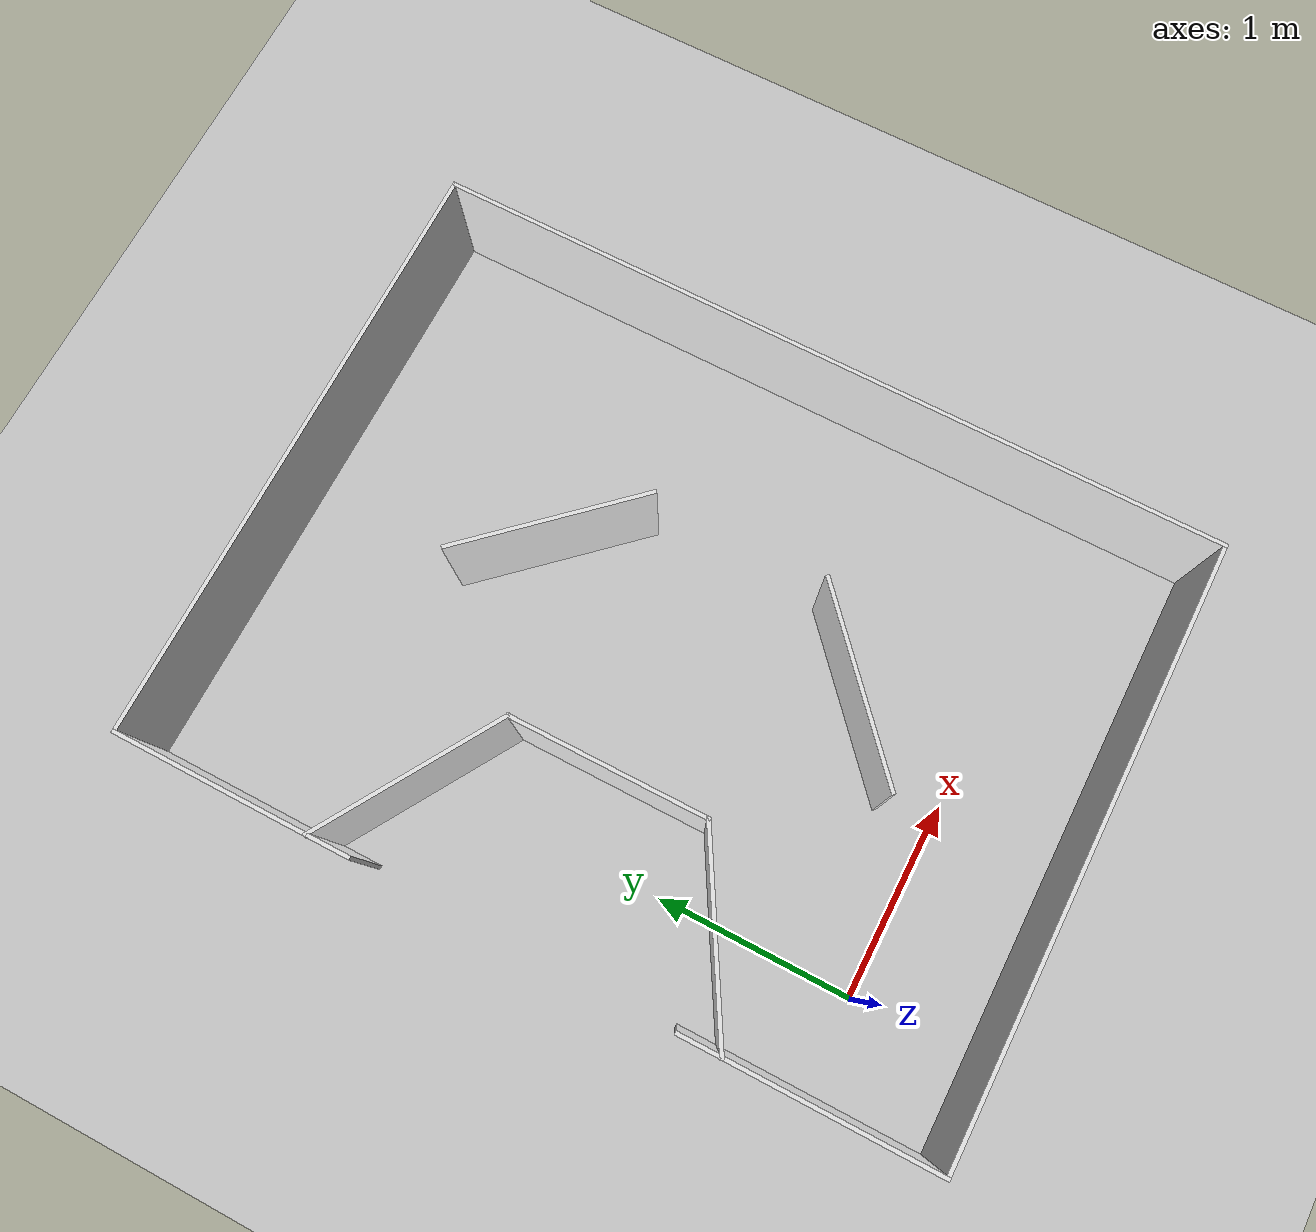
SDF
<?xml version="1.0" ?>
<sdf version="1.7">
  <world name="polygon_rosbag">

    <physics type='ode'>
      <real_time_update_rate>1000</real_time_update_rate>
      <max_step_size>0.001</max_step_size>
      <real_time_factor>1</real_time_factor>
      <ode>
        <solver>
          <type>quick</type>
          <iters>150</iters>
          <precon_iters>0</precon_iters>
          <sor>1.4</sor>
          <use_dynamic_moi_rescaling>1</use_dynamic_moi_rescaling>
        </solver>
        <constraints>
          <cfm>1e-05</cfm>
          <erp>0.2</erp>
          <contact_max_correcting_vel>100</contact_max_correcting_vel>
          <contact_surface_layer>0.001</contact_surface_layer>
        </constraints>
      </ode>
    </physics>

    <gravity>0 0 -9.8</gravity>
    <magnetic_field>6e-06 2.3e-05 -4.2e-05</magnetic_field>
    <atmosphere type='adiabatic' />
    <scene>
      <ambient>0.4 0.4 0.4 1</ambient>
      <background>0.7 0.7 0.7 1</background>
      <shadows>1</shadows>
    </scene>

    <light name='sun' type='directional'>
      <cast_shadows>1</cast_shadows>
      <pose>0 0 10 0 -0 0</pose>
      <diffuse>0.8 0.8 0.8 1</diffuse>
      <specular>0.2 0.2 0.2 1</specular>
      <direction>-0.5 0.1 -0.9</direction>
    </light>

    <model name='ground_plane'>
      <static>1</static>
      <link name='link'>
        <collision name='collision'>
          <geometry>
            <plane>
              <normal>0 0 1</normal>
              <size>100 100</size>
            </plane>
          </geometry>
          <surface>
            <friction>
              <ode>
                <mu>100</mu>
                <mu2>50</mu2>
              </ode>
            </friction>
          </surface>
        </collision>
        <visual name='visual'>
          <cast_shadows>0</cast_shadows>
          <geometry>
            <plane>
              <normal>0 0 1</normal>
              <size>100 100</size>
            </plane>
          </geometry>
          <material>
            <script>
              <uri>file://media/materials/scripts/gazebo.material</uri>
              <name>Gazebo/Grey</name>
            </script>
          </material>
        </visual>
      </link>
    </model>

    <model name='polygon_rosbag_built'>
      <static>1</static>
      <link name="Panel_0">
        <pose>2.576 1.432 0 0 0 1.5708</pose>
        <collision name="Panel_0_Collision">
          <pose>0 0 0.300 0 0 0</pose>
          <geometry><box><size>4.068 0.02 0.600</size></box></geometry>
        </collision>
        <visual name="Panel_0_Visual">
          <pose>0 0 0.300 0 0 0</pose>
          <geometry><box><size>4.068 0.02 0.600</size></box></geometry>
          <material>
            <script>
              <uri>file://media/materials/scripts/gazebo.material</uri>
              <name>Gazebo/White</name>
            </script>
          </material>
        </visual>
      </link>
      <link name="Panel_1">
        <pose>1.049 -0.592 0 0 0 0.0000</pose>
        <collision name="Panel_1_Collision">
          <pose>0 0 0.300 0 0 0</pose>
          <geometry><box><size>3.074 0.02 0.600</size></box></geometry>
        </collision>
        <visual name="Panel_1_Visual">
          <pose>0 0 0.300 0 0 0</pose>
          <geometry><box><size>3.074 0.02 0.600</size></box></geometry>
          <material>
            <script>
              <uri>file://media/materials/scripts/gazebo.material</uri>
              <name>Gazebo/White</name>
            </script>
          </material>
        </visual>
      </link>
      <link name="Panel_2">
        <pose>1.049 3.456 0 0 0 3.1416</pose>
        <collision name="Panel_2_Collision">
          <pose>0 0 0.300 0 0 0</pose>
          <geometry><box><size>3.074 0.02 0.600</size></box></geometry>
        </collision>
        <visual name="Panel_2_Visual">
          <pose>0 0 0.300 0 0 0</pose>
          <geometry><box><size>3.074 0.02 0.600</size></box></geometry>
          <material>
            <script>
              <uri>file://media/materials/scripts/gazebo.material</uri>
              <name>Gazebo/White</name>
            </script>
          </material>
        </visual>
      </link>
      <link name="Panel_3">
        <pose>-0.478 0.031 0 0 0 1.5708</pose>
        <collision name="Panel_3_Collision">
          <pose>0 0 0.300 0 0 0</pose>
          <geometry><box><size>1.267 0.02 0.600</size></box></geometry>
        </collision>
        <visual name="Panel_3_Visual">
          <pose>0 0 0.300 0 0 0</pose>
          <geometry><box><size>1.267 0.02 0.600</size></box></geometry>
          <material>
            <script>
              <uri>file://media/materials/scripts/gazebo.material</uri>
              <name>Gazebo/White</name>
            </script>
          </material>
        </visual>
      </link>
      <link name="Panel_4">
        <pose>-0.478 2.855 0 0 0 1.5708</pose>
        <collision name="Panel_4_Collision">
          <pose>0 0 0.300 0 0 0</pose>
          <geometry><box><size>1.220 0.02 0.600</size></box></geometry>
        </collision>
        <visual name="Panel_4_Visual">
          <pose>0 0 0.300 0 0 0</pose>
          <geometry><box><size>1.220 0.02 0.600</size></box></geometry>
          <material>
            <script>
              <uri>file://media/materials/scripts/gazebo.material</uri>
              <name>Gazebo/White</name>
            </script>
          </material>
        </visual>
      </link>
      <link name="Panel_5">
        <pose>-0.048 2.206 0 0 0 2.5932</pose>
        <collision name="Panel_5_Collision">
          <pose>0 0 0.300 0 0 0</pose>
          <geometry><box><size>1.029 0.02 0.600</size></box></geometry>
        </collision>
        <visual name="Panel_5_Visual">
          <pose>0 0 0.300 0 0 0</pose>
          <geometry><box><size>1.029 0.02 0.600</size></box></geometry>
          <material>
            <script>
              <uri>file://media/materials/scripts/gazebo.material</uri>
              <name>Gazebo/White</name>
            </script>
          </material>
        </visual>
      </link>
      <link name="Panel_6">
        <pose>1.231 0.620 0 0 0 0.7332</pose>
        <collision name="Panel_6_Collision">
          <pose>0 0 0.300 0 0 0</pose>
          <geometry><box><size>1.035 0.02 0.600</size></box></geometry>
        </collision>
        <visual name="Panel_6_Visual">
          <pose>0 0 0.300 0 0 0</pose>
          <geometry><box><size>1.035 0.02 0.600</size></box></geometry>
          <material>
            <script>
              <uri>file://media/materials/scripts/gazebo.material</uri>
              <name>Gazebo/White</name>
            </script>
          </material>
        </visual>
      </link>
      <link name="Panel_7">
        <pose>1.271 2.218 0 0 0 2.3145</pose>
        <collision name="Panel_7_Collision">
          <pose>0 0 0.300 0 0 0</pose>
          <geometry><box><size>1.019 0.02 0.600</size></box></geometry>
        </collision>
        <visual name="Panel_7_Visual">
          <pose>0 0 0.300 0 0 0</pose>
          <geometry><box><size>1.019 0.02 0.600</size></box></geometry>
          <material>
            <script>
              <uri>file://media/materials/scripts/gazebo.material</uri>
              <name>Gazebo/White</name>
            </script>
          </material>
        </visual>
      </link>
      <link name="Panel_8">
        <pose>-0.048 0.695 0 0 0 0.5257</pose>
        <collision name="Panel_8_Collision">
          <pose>0 0 0.300 0 0 0</pose>
          <geometry><box><size>1.016 0.02 0.600</size></box></geometry>
        </collision>
        <visual name="Panel_8_Visual">
          <pose>0 0 0.300 0 0 0</pose>
          <geometry><box><size>1.016 0.02 0.600</size></box></geometry>
          <material>
            <script>
              <uri>file://media/materials/scripts/gazebo.material</uri>
              <name>Gazebo/White</name>
            </script>
          </material>
        </visual>
      </link>
      <link name="Panel_9">
        <pose>0.383 1.444 0 0 0 1.5708</pose>
        <collision name="Panel_9_Collision">
          <pose>0 0 0.300 0 0 0</pose>
          <geometry><box><size>1.018 0.02 0.600</size></box></geometry>
        </collision>
        <visual name="Panel_9_Visual">
          <pose>0 0 0.300 0 0 0</pose>
          <geometry><box><size>1.018 0.02 0.600</size></box></geometry>
          <material>
            <script>
              <uri>file://media/materials/scripts/gazebo.material</uri>
              <name>Gazebo/White</name>
            </script>
          </material>
        </visual>
      </link>
    </model>
  </world>
</sdf>
